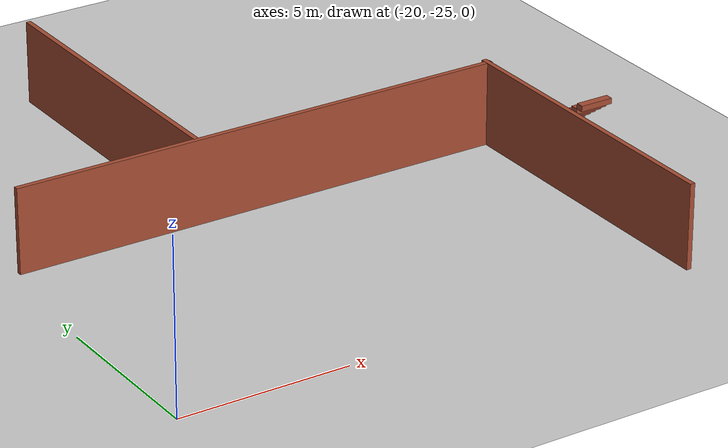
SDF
<sdf version="1.6">
 <world name="default">
  <model name="ground_plane">
   <static>1</static>
   <link name="link">
    <collision name="collision">
     <geometry><plane><normal>0 0 1</normal><size>100 100</size></plane></geometry>
     <surface><friction><ode><mu>100</mu><mu2>50</mu2></ode></friction></surface>
    </collision>
    <visual name="visual">
     <cast_shadows>0</cast_shadows>
     <geometry><plane><normal>0 0 1</normal><size>100 100</size></plane></geometry>
     <material>
      <script><uri>file://media/materials/scripts/gazebo.material</uri><name>Gazebo/Grey</name></script>
     </material>
    </visual>
   </link>
  </model>
  <model name="wonkyBuilding">
   <link name="Stairs_0">
    <visual name="Stairs_0_Visual_0">
     <pose>1.61422 -5.84922 0.083333 0 -0 0</pose>
     <geometry><box><size>1 0.233333 0.166667</size></box></geometry>
     <material>
      <script><uri>file://media/materials/scripts/gazebo.material</uri><name>Gazebo/Bricks</name></script>
      <ambient>1 1 1 1</ambient>
      <shader type="pixel"/>
      <diffuse>1 1 1 1</diffuse>
      <specular>0.2 0.2 0.2 1</specular>
      <emissive>0 0 0 1</emissive>
     </material>
     <meta><layer>0</layer></meta>
    </visual>
    <visual name="Stairs_0_Visual_1">
     <pose>1.61422 -6.08256 0.25 0 -0 0</pose>
     <geometry><box><size>1 0.233333 0.166667</size></box></geometry>
     <material>
      <script><uri>file://media/materials/scripts/gazebo.material</uri><name>Gazebo/Bricks</name></script>
      <ambient>1 1 1 1</ambient>
      <shader type="pixel"/>
      <diffuse>1 1 1 1</diffuse>
      <specular>0.2 0.2 0.2 1</specular>
      <emissive>0 0 0 1</emissive>
     </material>
     <meta><layer>0</layer></meta>
    </visual>
    <visual name="Stairs_0_Visual_2">
     <pose>1.61422 -6.31589 0.416667 0 -0 0</pose>
     <geometry><box><size>1 0.233333 0.166667</size></box></geometry>
     <material>
      <script><uri>file://media/materials/scripts/gazebo.material</uri><name>Gazebo/Bricks</name></script>
      <ambient>1 1 1 1</ambient>
      <shader type="pixel"/>
      <diffuse>1 1 1 1</diffuse>
      <specular>0.2 0.2 0.2 1</specular>
      <emissive>0 0 0 1</emissive>
     </material>
     <meta><layer>0</layer></meta>
    </visual>
    <visual name="Stairs_0_Visual_3">
     <pose>1.61422 -6.54923 0.583333 0 -0 0</pose>
     <geometry><box><size>1 0.233333 0.166667</size></box></geometry>
     <material>
      <script><uri>file://media/materials/scripts/gazebo.material</uri><name>Gazebo/Bricks</name></script>
      <ambient>1 1 1 1</ambient>
      <shader type="pixel"/>
      <diffuse>1 1 1 1</diffuse>
      <specular>0.2 0.2 0.2 1</specular>
      <emissive>0 0 0 1</emissive>
     </material>
     <meta><layer>0</layer></meta>
    </visual>
    <visual name="Stairs_0_Visual_4">
     <pose>1.61422 -6.78256 0.75 0 -0 0</pose>
     <geometry><box><size>1 0.233333 0.166667</size></box></geometry>
     <material>
      <script><uri>file://media/materials/scripts/gazebo.material</uri><name>Gazebo/Bricks</name></script>
      <ambient>1 1 1 1</ambient>
      <shader type="pixel"/>
      <diffuse>1 1 1 1</diffuse>
      <specular>0.2 0.2 0.2 1</specular>
      <emissive>0 0 0 1</emissive>
     </material>
     <meta><layer>0</layer></meta>
    </visual>
    <visual name="Stairs_0_Visual_5">
     <pose>1.61422 -7.01589 0.916667 0 -0 0</pose>
     <geometry><box><size>1 0.233333 0.166667</size></box></geometry>
     <material>
      <script><uri>file://media/materials/scripts/gazebo.material</uri><name>Gazebo/Bricks</name></script>
      <ambient>1 1 1 1</ambient>
      <shader type="pixel"/>
      <diffuse>1 1 1 1</diffuse>
      <specular>0.2 0.2 0.2 1</specular>
      <emissive>0 0 0 1</emissive>
     </material>
     <meta><layer>0</layer></meta>
    </visual>
    <visual name="Stairs_0_Visual_6">
     <pose>1.61422 -7.24923 1.08333 0 -0 0</pose>
     <geometry><box><size>1 0.233333 0.166667</size></box></geometry>
     <material>
      <script><uri>file://media/materials/scripts/gazebo.material</uri><name>Gazebo/Bricks</name></script>
      <ambient>1 1 1 1</ambient>
      <shader type="pixel"/>
      <diffuse>1 1 1 1</diffuse>
      <specular>0.2 0.2 0.2 1</specular>
      <emissive>0 0 0 1</emissive>
     </material>
     <meta><layer>0</layer></meta>
    </visual>
    <visual name="Stairs_0_Visual_7">
     <pose>1.61422 -7.48256 1.25 0 -0 0</pose>
     <geometry><box><size>1 0.233333 0.166667</size></box></geometry>
     <material>
      <script><uri>file://media/materials/scripts/gazebo.material</uri><name>Gazebo/Bricks</name></script>
      <ambient>1 1 1 1</ambient>
      <shader type="pixel"/>
      <diffuse>1 1 1 1</diffuse>
      <specular>0.2 0.2 0.2 1</specular>
      <emissive>0 0 0 1</emissive>
     </material>
     <meta><layer>0</layer></meta>
    </visual>
    <visual name="Stairs_0_Visual_8">
     <pose>1.61422 -7.71589 1.41667 0 -0 0</pose>
     <geometry><box><size>1 0.233333 0.166667</size></box></geometry>
     <material>
      <script><uri>file://media/materials/scripts/gazebo.material</uri><name>Gazebo/Bricks</name></script>
      <ambient>1 1 1 1</ambient>
      <shader type="pixel"/>
      <diffuse>1 1 1 1</diffuse>
      <specular>0.2 0.2 0.2 1</specular>
      <emissive>0 0 0 1</emissive>
     </material>
     <meta><layer>0</layer></meta>
    </visual>
    <visual name="Stairs_0_Visual_9">
     <pose>1.61422 -7.94923 1.58333 0 -0 0</pose>
     <geometry><box><size>1 0.233333 0.166667</size></box></geometry>
     <material>
      <script><uri>file://media/materials/scripts/gazebo.material</uri><name>Gazebo/Bricks</name></script>
      <ambient>1 1 1 1</ambient>
      <shader type="pixel"/>
      <diffuse>1 1 1 1</diffuse>
      <specular>0.2 0.2 0.2 1</specular>
      <emissive>0 0 0 1</emissive>
     </material>
     <meta><layer>0</layer></meta>
    </visual>
    <visual name="Stairs_0_Visual_10">
     <pose>1.61422 -8.18256 1.75 0 -0 0</pose>
     <geometry><box><size>1 0.233333 0.166667</size></box></geometry>
     <material>
      <script><uri>file://media/materials/scripts/gazebo.material</uri><name>Gazebo/Bricks</name></script>
      <ambient>1 1 1 1</ambient>
      <shader type="pixel"/>
      <diffuse>1 1 1 1</diffuse>
      <specular>0.2 0.2 0.2 1</specular>
      <emissive>0 0 0 1</emissive>
     </material>
     <meta><layer>0</layer></meta>
    </visual>
    <visual name="Stairs_0_Visual_11">
     <pose>1.61422 -8.41589 1.91667 0 -0 0</pose>
     <geometry><box><size>1 0.233333 0.166667</size></box></geometry>
     <material>
      <script><uri>file://media/materials/scripts/gazebo.material</uri><name>Gazebo/Bricks</name></script>
      <ambient>1 1 1 1</ambient>
      <shader type="pixel"/>
      <diffuse>1 1 1 1</diffuse>
      <specular>0.2 0.2 0.2 1</specular>
      <emissive>0 0 0 1</emissive>
     </material>
     <meta><layer>0</layer></meta>
    </visual>
    <visual name="Stairs_0_Visual_12">
     <pose>1.61422 -8.64922 2.08333 0 -0 0</pose>
     <geometry><box><size>1 0.233333 0.166667</size></box></geometry>
     <material>
      <script><uri>file://media/materials/scripts/gazebo.material</uri><name>Gazebo/Bricks</name></script>
      <ambient>1 1 1 1</ambient>
      <shader type="pixel"/>
      <diffuse>1 1 1 1</diffuse>
      <specular>0.2 0.2 0.2 1</specular>
      <emissive>0 0 0 1</emissive>
     </material>
     <meta><layer>0</layer></meta>
    </visual>
    <visual name="Stairs_0_Visual_13">
     <pose>1.61422 -8.88256 2.25 0 -0 0</pose>
     <geometry><box><size>1 0.233333 0.166667</size></box></geometry>
     <material>
      <script><uri>file://media/materials/scripts/gazebo.material</uri><name>Gazebo/Bricks</name></script>
      <ambient>1 1 1 1</ambient>
      <shader type="pixel"/>
      <diffuse>1 1 1 1</diffuse>
      <specular>0.2 0.2 0.2 1</specular>
      <emissive>0 0 0 1</emissive>
     </material>
     <meta><layer>0</layer></meta>
    </visual>
    <visual name="Stairs_0_Visual_14">
     <pose>1.61422 -9.11589 2.41667 0 -0 0</pose>
     <geometry><box><size>1 0.233333 0.166667</size></box></geometry>
     <material>
      <script><uri>file://media/materials/scripts/gazebo.material</uri><name>Gazebo/Bricks</name></script>
      <ambient>1 1 1 1</ambient>
      <shader type="pixel"/>
      <diffuse>1 1 1 1</diffuse>
      <specular>0.2 0.2 0.2 1</specular>
      <emissive>0 0 0 1</emissive>
     </material>
     <meta><layer>0</layer></meta>
    </visual>
    <collision name="Stairs_0_Collision_0">
     <pose>1.61422 -5.84922 0.083333 0 -0 0</pose>
     <geometry><box><size>1 0.233333 0.166667</size></box></geometry>
     <surface>
      <friction>
       <ode><mu>1</mu><mu2>1</mu2><fdir1>0 0 0</fdir1><slip1>0</slip1><slip2>0</slip2></ode>
       <torsional>
        <coefficient>1</coefficient>
        <patch_radius>0</patch_radius>
        <surface_radius>0</surface_radius>
        <use_patch_radius>1</use_patch_radius>
        <ode><slip>0</slip></ode>
       </torsional>
      </friction>
      <bounce><restitution_coefficient>0</restitution_coefficient><threshold>1e+06</threshold></bounce>
      <contact>
       <collide_without_contact>0</collide_without_contact>
       <collide_without_contact_bitmask>1</collide_without_contact_bitmask>
       <collide_bitmask>1</collide_bitmask>
       <ode>
        <soft_cfm>0</soft_cfm>
        <soft_erp>0.2</soft_erp>
        <kp>1e+13</kp>
        <kd>1</kd>
        <max_vel>0.01</max_vel>
        <min_depth>0</min_depth>
       </ode>
       <bullet>
        <split_impulse>1</split_impulse>
        <split_impulse_penetration_threshold>-0.01</split_impulse_penetration_threshold>
        <soft_cfm>0</soft_cfm>
        <soft_erp>0.2</soft_erp>
        <kp>1e+13</kp>
        <kd>1</kd>
       </bullet>
      </contact>
     </surface>
    </collision>
    <collision name="Stairs_0_Collision_1">
     <pose>1.61422 -6.08256 0.25 0 -0 0</pose>
     <geometry><box><size>1 0.233333 0.166667</size></box></geometry>
     <surface>
      <friction>
       <ode><mu>1</mu><mu2>1</mu2><fdir1>0 0 0</fdir1><slip1>0</slip1><slip2>0</slip2></ode>
       <torsional>
        <coefficient>1</coefficient>
        <patch_radius>0</patch_radius>
        <surface_radius>0</surface_radius>
        <use_patch_radius>1</use_patch_radius>
        <ode><slip>0</slip></ode>
       </torsional>
      </friction>
      <bounce><restitution_coefficient>0</restitution_coefficient><threshold>1e+06</threshold></bounce>
      <contact>
       <collide_without_contact>0</collide_without_contact>
       <collide_without_contact_bitmask>1</collide_without_contact_bitmask>
       <collide_bitmask>1</collide_bitmask>
       <ode>
        <soft_cfm>0</soft_cfm>
        <soft_erp>0.2</soft_erp>
        <kp>1e+13</kp>
        <kd>1</kd>
        <max_vel>0.01</max_vel>
        <min_depth>0</min_depth>
       </ode>
       <bullet>
        <split_impulse>1</split_impulse>
        <split_impulse_penetration_threshold>-0.01</split_impulse_penetration_threshold>
        <soft_cfm>0</soft_cfm>
        <soft_erp>0.2</soft_erp>
        <kp>1e+13</kp>
        <kd>1</kd>
       </bullet>
      </contact>
     </surface>
    </collision>
    <collision name="Stairs_0_Collision_2">
     <pose>1.61422 -6.31589 0.416667 0 -0 0</pose>
     <geometry><box><size>1 0.233333 0.166667</size></box></geometry>
     <surface>
      <friction>
       <ode><mu>1</mu><mu2>1</mu2><fdir1>0 0 0</fdir1><slip1>0</slip1><slip2>0</slip2></ode>
       <torsional>
        <coefficient>1</coefficient>
        <patch_radius>0</patch_radius>
        <surface_radius>0</surface_radius>
        <use_patch_radius>1</use_patch_radius>
        <ode><slip>0</slip></ode>
       </torsional>
      </friction>
      <bounce><restitution_coefficient>0</restitution_coefficient><threshold>1e+06</threshold></bounce>
      <contact>
       <collide_without_contact>0</collide_without_contact>
       <collide_without_contact_bitmask>1</collide_without_contact_bitmask>
       <collide_bitmask>1</collide_bitmask>
       <ode>
        <soft_cfm>0</soft_cfm>
        <soft_erp>0.2</soft_erp>
        <kp>1e+13</kp>
        <kd>1</kd>
        <max_vel>0.01</max_vel>
        <min_depth>0</min_depth>
       </ode>
       <bullet>
        <split_impulse>1</split_impulse>
        <split_impulse_penetration_threshold>-0.01</split_impulse_penetration_threshold>
        <soft_cfm>0</soft_cfm>
        <soft_erp>0.2</soft_erp>
        <kp>1e+13</kp>
        <kd>1</kd>
       </bullet>
      </contact>
     </surface>
    </collision>
    <collision name="Stairs_0_Collision_3">
     <pose>1.61422 -6.54923 0.583333 0 -0 0</pose>
     <geometry><box><size>1 0.233333 0.166667</size></box></geometry>
     <surface>
      <friction>
       <ode><mu>1</mu><mu2>1</mu2><fdir1>0 0 0</fdir1><slip1>0</slip1><slip2>0</slip2></ode>
       <torsional>
        <coefficient>1</coefficient>
        <patch_radius>0</patch_radius>
        <surface_radius>0</surface_radius>
        <use_patch_radius>1</use_patch_radius>
        <ode><slip>0</slip></ode>
       </torsional>
      </friction>
      <bounce><restitution_coefficient>0</restitution_coefficient><threshold>1e+06</threshold></bounce>
      <contact>
       <collide_without_contact>0</collide_without_contact>
       <collide_without_contact_bitmask>1</collide_without_contact_bitmask>
       <collide_bitmask>1</collide_bitmask>
       <ode>
        <soft_cfm>0</soft_cfm>
        <soft_erp>0.2</soft_erp>
        <kp>1e+13</kp>
        <kd>1</kd>
        <max_vel>0.01</max_vel>
        <min_depth>0</min_depth>
       </ode>
       <bullet>
        <split_impulse>1</split_impulse>
        <split_impulse_penetration_threshold>-0.01</split_impulse_penetration_threshold>
        <soft_cfm>0</soft_cfm>
        <soft_erp>0.2</soft_erp>
        <kp>1e+13</kp>
        <kd>1</kd>
       </bullet>
      </contact>
     </surface>
    </collision>
    <collision name="Stairs_0_Collision_4">
     <pose>1.61422 -6.78256 0.75 0 -0 0</pose>
     <geometry><box><size>1 0.233333 0.166667</size></box></geometry>
     <surface>
      <friction>
       <ode><mu>1</mu><mu2>1</mu2><fdir1>0 0 0</fdir1><slip1>0</slip1><slip2>0</slip2></ode>
       <torsional>
        <coefficient>1</coefficient>
        <patch_radius>0</patch_radius>
        <surface_radius>0</surface_radius>
        <use_patch_radius>1</use_patch_radius>
        <ode><slip>0</slip></ode>
       </torsional>
      </friction>
      <bounce><restitution_coefficient>0</restitution_coefficient><threshold>1e+06</threshold></bounce>
      <contact>
       <collide_without_contact>0</collide_without_contact>
       <collide_without_contact_bitmask>1</collide_without_contact_bitmask>
       <collide_bitmask>1</collide_bitmask>
       <ode>
        <soft_cfm>0</soft_cfm>
        <soft_erp>0.2</soft_erp>
        <kp>1e+13</kp>
        <kd>1</kd>
        <max_vel>0.01</max_vel>
        <min_depth>0</min_depth>
       </ode>
       <bullet>
        <split_impulse>1</split_impulse>
        <split_impulse_penetration_threshold>-0.01</split_impulse_penetration_threshold>
        <soft_cfm>0</soft_cfm>
        <soft_erp>0.2</soft_erp>
        <kp>1e+13</kp>
        <kd>1</kd>
       </bullet>
      </contact>
     </surface>
    </collision>
    <collision name="Stairs_0_Collision_5">
     <pose>1.61422 -7.01589 0.916667 0 -0 0</pose>
     <geometry><box><size>1 0.233333 0.166667</size></box></geometry>
     <surface>
      <friction>
       <ode><mu>1</mu><mu2>1</mu2><fdir1>0 0 0</fdir1><slip1>0</slip1><slip2>0</slip2></ode>
       <torsional>
        <coefficient>1</coefficient>
        <patch_radius>0</patch_radius>
        <surface_radius>0</surface_radius>
        <use_patch_radius>1</use_patch_radius>
        <ode><slip>0</slip></ode>
       </torsional>
      </friction>
      <bounce><restitution_coefficient>0</restitution_coefficient><threshold>1e+06</threshold></bounce>
      <contact>
       <collide_without_contact>0</collide_without_contact>
       <collide_without_contact_bitmask>1</collide_without_contact_bitmask>
       <collide_bitmask>1</collide_bitmask>
       <ode>
        <soft_cfm>0</soft_cfm>
        <soft_erp>0.2</soft_erp>
        <kp>1e+13</kp>
        <kd>1</kd>
        <max_vel>0.01</max_vel>
        <min_depth>0</min_depth>
       </ode>
       <bullet>
        <split_impulse>1</split_impulse>
        <split_impulse_penetration_threshold>-0.01</split_impulse_penetration_threshold>
        <soft_cfm>0</soft_cfm>
        <soft_erp>0.2</soft_erp>
        <kp>1e+13</kp>
        <kd>1</kd>
       </bullet>
      </contact>
     </surface>
    </collision>
    <collision name="Stairs_0_Collision_6">
     <pose>1.61422 -7.24923 1.08333 0 -0 0</pose>
     <geometry><box><size>1 0.233333 0.166667</size></box></geometry>
     <surface>
      <friction>
       <ode><mu>1</mu><mu2>1</mu2><fdir1>0 0 0</fdir1><slip1>0</slip1><slip2>0</slip2></ode>
       <torsional>
        <coefficient>1</coefficient>
        <patch_radius>0</patch_radius>
        <surface_radius>0</surface_radius>
        <use_patch_radius>1</use_patch_radius>
        <ode><slip>0</slip></ode>
       </torsional>
      </friction>
      <bounce><restitution_coefficient>0</restitution_coefficient><threshold>1e+06</threshold></bounce>
      <contact>
       <collide_without_contact>0</collide_without_contact>
       <collide_without_contact_bitmask>1</collide_without_contact_bitmask>
       <collide_bitmask>1</collide_bitmask>
       <ode>
        <soft_cfm>0</soft_cfm>
        <soft_erp>0.2</soft_erp>
        <kp>1e+13</kp>
        <kd>1</kd>
        <max_vel>0.01</max_vel>
        <min_depth>0</min_depth>
       </ode>
       <bullet>
        <split_impulse>1</split_impulse>
        <split_impulse_penetration_threshold>-0.01</split_impulse_penetration_threshold>
        <soft_cfm>0</soft_cfm>
        <soft_erp>0.2</soft_erp>
        <kp>1e+13</kp>
        <kd>1</kd>
       </bullet>
      </contact>
     </surface>
    </collision>
    <collision name="Stairs_0_Collision_8">
     <pose>1.61422 -7.71589 1.41667 0 -0 0</pose>
     <geometry><box><size>1 0.233333 0.166667</size></box></geometry>
     <surface>
      <friction>
       <ode><mu>1</mu><mu2>1</mu2><fdir1>0 0 0</fdir1><slip1>0</slip1><slip2>0</slip2></ode>
       <torsional>
        <coefficient>1</coefficient>
        <patch_radius>0</patch_radius>
        <surface_radius>0</surface_radius>
        <use_patch_radius>1</use_patch_radius>
        <ode><slip>0</slip></ode>
       </torsional>
      </friction>
      <bounce><restitution_coefficient>0</restitution_coefficient><threshold>1e+06</threshold></bounce>
      <contact>
       <collide_without_contact>0</collide_without_contact>
       <collide_without_contact_bitmask>1</collide_without_contact_bitmask>
       <collide_bitmask>1</collide_bitmask>
       <ode>
        <soft_cfm>0</soft_cfm>
        <soft_erp>0.2</soft_erp>
        <kp>1e+13</kp>
        <kd>1</kd>
        <max_vel>0.01</max_vel>
        <min_depth>0</min_depth>
       </ode>
       <bullet>
        <split_impulse>1</split_impulse>
        <split_impulse_penetration_threshold>-0.01</split_impulse_penetration_threshold>
        <soft_cfm>0</soft_cfm>
        <soft_erp>0.2</soft_erp>
        <kp>1e+13</kp>
        <kd>1</kd>
       </bullet>
      </contact>
     </surface>
    </collision>
    <collision name="Stairs_0_Collision_7">
     <pose>1.61422 -7.48256 1.25 0 -0 0</pose>
     <geometry><box><size>1 0.233333 0.166667</size></box></geometry>
     <surface>
      <friction>
       <ode><mu>1</mu><mu2>1</mu2><fdir1>0 0 0</fdir1><slip1>0</slip1><slip2>0</slip2></ode>
       <torsional>
        <coefficient>1</coefficient>
        <patch_radius>0</patch_radius>
        <surface_radius>0</surface_radius>
        <use_patch_radius>1</use_patch_radius>
        <ode><slip>0</slip></ode>
       </torsional>
      </friction>
      <bounce><restitution_coefficient>0</restitution_coefficient><threshold>1e+06</threshold></bounce>
      <contact>
       <collide_without_contact>0</collide_without_contact>
       <collide_without_contact_bitmask>1</collide_without_contact_bitmask>
       <collide_bitmask>1</collide_bitmask>
       <ode>
        <soft_cfm>0</soft_cfm>
        <soft_erp>0.2</soft_erp>
        <kp>1e+13</kp>
        <kd>1</kd>
        <max_vel>0.01</max_vel>
        <min_depth>0</min_depth>
       </ode>
       <bullet>
        <split_impulse>1</split_impulse>
        <split_impulse_penetration_threshold>-0.01</split_impulse_penetration_threshold>
        <soft_cfm>0</soft_cfm>
        <soft_erp>0.2</soft_erp>
        <kp>1e+13</kp>
        <kd>1</kd>
       </bullet>
      </contact>
     </surface>
    </collision>
    <collision name="Stairs_0_Collision_10">
     <pose>1.61422 -8.18256 1.75 0 -0 0</pose>
     <geometry><box><size>1 0.233333 0.166667</size></box></geometry>
     <surface>
      <friction>
       <ode><mu>1</mu><mu2>1</mu2><fdir1>0 0 0</fdir1><slip1>0</slip1><slip2>0</slip2></ode>
       <torsional>
        <coefficient>1</coefficient>
        <patch_radius>0</patch_radius>
        <surface_radius>0</surface_radius>
        <use_patch_radius>1</use_patch_radius>
        <ode><slip>0</slip></ode>
       </torsional>
      </friction>
      <bounce><restitution_coefficient>0</restitution_coefficient><threshold>1e+06</threshold></bounce>
      <contact>
       <collide_without_contact>0</collide_without_contact>
       <collide_without_contact_bitmask>1</collide_without_contact_bitmask>
       <collide_bitmask>1</collide_bitmask>
       <ode>
        <soft_cfm>0</soft_cfm>
        <soft_erp>0.2</soft_erp>
        <kp>1e+13</kp>
        <kd>1</kd>
        <max_vel>0.01</max_vel>
        <min_depth>0</min_depth>
       </ode>
       <bullet>
        <split_impulse>1</split_impulse>
        <split_impulse_penetration_threshold>-0.01</split_impulse_penetration_threshold>
        <soft_cfm>0</soft_cfm>
        <soft_erp>0.2</soft_erp>
        <kp>1e+13</kp>
        <kd>1</kd>
       </bullet>
      </contact>
     </surface>
    </collision>
    <collision name="Stairs_0_Collision_9">
     <pose>1.61422 -7.94923 1.58333 0 -0 0</pose>
     <geometry><box><size>1 0.233333 0.166667</size></box></geometry>
     <surface>
      <friction>
       <ode><mu>1</mu><mu2>1</mu2><fdir1>0 0 0</fdir1><slip1>0</slip1><slip2>0</slip2></ode>
       <torsional>
        <coefficient>1</coefficient>
        <patch_radius>0</patch_radius>
        <surface_radius>0</surface_radius>
        <use_patch_radius>1</use_patch_radius>
        <ode><slip>0</slip></ode>
       </torsional>
      </friction>
      <bounce><restitution_coefficient>0</restitution_coefficient><threshold>1e+06</threshold></bounce>
      <contact>
       <collide_without_contact>0</collide_without_contact>
       <collide_without_contact_bitmask>1</collide_without_contact_bitmask>
       <collide_bitmask>1</collide_bitmask>
       <ode>
        <soft_cfm>0</soft_cfm>
        <soft_erp>0.2</soft_erp>
        <kp>1e+13</kp>
        <kd>1</kd>
        <max_vel>0.01</max_vel>
        <min_depth>0</min_depth>
       </ode>
       <bullet>
        <split_impulse>1</split_impulse>
        <split_impulse_penetration_threshold>-0.01</split_impulse_penetration_threshold>
        <soft_cfm>0</soft_cfm>
        <soft_erp>0.2</soft_erp>
        <kp>1e+13</kp>
        <kd>1</kd>
       </bullet>
      </contact>
     </surface>
    </collision>
    <collision name="Stairs_0_Collision_11">
     <pose>1.61422 -8.41589 1.91667 0 -0 0</pose>
     <geometry><box><size>1 0.233333 0.166667</size></box></geometry>
     <surface>
      <friction>
       <ode><mu>1</mu><mu2>1</mu2><fdir1>0 0 0</fdir1><slip1>0</slip1><slip2>0</slip2></ode>
       <torsional>
        <coefficient>1</coefficient>
        <patch_radius>0</patch_radius>
        <surface_radius>0</surface_radius>
        <use_patch_radius>1</use_patch_radius>
        <ode><slip>0</slip></ode>
       </torsional>
      </friction>
      <bounce><restitution_coefficient>0</restitution_coefficient><threshold>1e+06</threshold></bounce>
      <contact>
       <collide_without_contact>0</collide_without_contact>
       <collide_without_contact_bitmask>1</collide_without_contact_bitmask>
       <collide_bitmask>1</collide_bitmask>
       <ode>
        <soft_cfm>0</soft_cfm>
        <soft_erp>0.2</soft_erp>
        <kp>1e+13</kp>
        <kd>1</kd>
        <max_vel>0.01</max_vel>
        <min_depth>0</min_depth>
       </ode>
       <bullet>
        <split_impulse>1</split_impulse>
        <split_impulse_penetration_threshold>-0.01</split_impulse_penetration_threshold>
        <soft_cfm>0</soft_cfm>
        <soft_erp>0.2</soft_erp>
        <kp>1e+13</kp>
        <kd>1</kd>
       </bullet>
      </contact>
     </surface>
    </collision>
    <collision name="Stairs_0_Collision_13">
     <pose>1.61422 -8.88256 2.25 0 -0 0</pose>
     <geometry><box><size>1 0.233333 0.166667</size></box></geometry>
     <surface>
      <friction>
       <ode><mu>1</mu><mu2>1</mu2><fdir1>0 0 0</fdir1><slip1>0</slip1><slip2>0</slip2></ode>
       <torsional>
        <coefficient>1</coefficient>
        <patch_radius>0</patch_radius>
        <surface_radius>0</surface_radius>
        <use_patch_radius>1</use_patch_radius>
        <ode><slip>0</slip></ode>
       </torsional>
      </friction>
      <bounce><restitution_coefficient>0</restitution_coefficient><threshold>1e+06</threshold></bounce>
      <contact>
       <collide_without_contact>0</collide_without_contact>
       <collide_without_contact_bitmask>1</collide_without_contact_bitmask>
       <collide_bitmask>1</collide_bitmask>
       <ode>
        <soft_cfm>0</soft_cfm>
        <soft_erp>0.2</soft_erp>
        <kp>1e+13</kp>
        <kd>1</kd>
        <max_vel>0.01</max_vel>
        <min_depth>0</min_depth>
       </ode>
       <bullet>
        <split_impulse>1</split_impulse>
        <split_impulse_penetration_threshold>-0.01</split_impulse_penetration_threshold>
        <soft_cfm>0</soft_cfm>
        <soft_erp>0.2</soft_erp>
        <kp>1e+13</kp>
        <kd>1</kd>
       </bullet>
      </contact>
     </surface>
    </collision>
    <collision name="Stairs_0_Collision_12">
     <pose>1.61422 -8.64922 2.08333 0 -0 0</pose>
     <geometry><box><size>1 0.233333 0.166667</size></box></geometry>
     <surface>
      <friction>
       <ode><mu>1</mu><mu2>1</mu2><fdir1>0 0 0</fdir1><slip1>0</slip1><slip2>0</slip2></ode>
       <torsional>
        <coefficient>1</coefficient>
        <patch_radius>0</patch_radius>
        <surface_radius>0</surface_radius>
        <use_patch_radius>1</use_patch_radius>
        <ode><slip>0</slip></ode>
       </torsional>
      </friction>
      <bounce><restitution_coefficient>0</restitution_coefficient><threshold>1e+06</threshold></bounce>
      <contact>
       <collide_without_contact>0</collide_without_contact>
       <collide_without_contact_bitmask>1</collide_without_contact_bitmask>
       <collide_bitmask>1</collide_bitmask>
       <ode>
        <soft_cfm>0</soft_cfm>
        <soft_erp>0.2</soft_erp>
        <kp>1e+13</kp>
        <kd>1</kd>
        <max_vel>0.01</max_vel>
        <min_depth>0</min_depth>
       </ode>
       <bullet>
        <split_impulse>1</split_impulse>
        <split_impulse_penetration_threshold>-0.01</split_impulse_penetration_threshold>
        <soft_cfm>0</soft_cfm>
        <soft_erp>0.2</soft_erp>
        <kp>1e+13</kp>
        <kd>1</kd>
       </bullet>
      </contact>
     </surface>
    </collision>
    <collision name="Stairs_0_Collision_14">
     <pose>1.61422 -9.11589 2.41667 0 -0 0</pose>
     <geometry><box><size>1 0.233333 0.166667</size></box></geometry>
     <surface>
      <friction>
       <ode><mu>1</mu><mu2>1</mu2><fdir1>0 0 0</fdir1><slip1>0</slip1><slip2>0</slip2></ode>
       <torsional>
        <coefficient>1</coefficient>
        <patch_radius>0</patch_radius>
        <surface_radius>0</surface_radius>
        <use_patch_radius>1</use_patch_radius>
        <ode><slip>0</slip></ode>
       </torsional>
      </friction>
      <bounce><restitution_coefficient>0</restitution_coefficient><threshold>1e+06</threshold></bounce>
      <contact>
       <collide_without_contact>0</collide_without_contact>
       <collide_without_contact_bitmask>1</collide_without_contact_bitmask>
       <collide_bitmask>1</collide_bitmask>
       <ode>
        <soft_cfm>0</soft_cfm>
        <soft_erp>0.2</soft_erp>
        <kp>1e+13</kp>
        <kd>1</kd>
        <max_vel>0.01</max_vel>
        <min_depth>0</min_depth>
       </ode>
       <bullet>
        <split_impulse>1</split_impulse>
        <split_impulse_penetration_threshold>-0.01</split_impulse_penetration_threshold>
        <soft_cfm>0</soft_cfm>
        <soft_erp>0.2</soft_erp>
        <kp>1e+13</kp>
        <kd>1</kd>
       </bullet>
      </contact>
     </surface>
    </collision>
   </link>
   <link name="Wall_44">
    <pose>-8.75228 -0.695387 0 0 0 -1.5708</pose>
    <visual name="Wall_44_Visual">
     <pose>0 0 1.25 0 -0 0</pose>
     <geometry><box><size>9.5 0.15 2.5</size></box></geometry>
     <material>
      <script><uri>file://media/materials/scripts/gazebo.material</uri><name>Gazebo/Bricks</name></script>
      <ambient>1 1 1 1</ambient>
      <shader type="pixel"/>
      <diffuse>1 1 1 1</diffuse>
      <specular>0.2 0.2 0.2 1</specular>
      <emissive>0 0 0 1</emissive>
     </material>
     <meta><layer>0</layer></meta>
    </visual>
    <collision name="Wall_44_Collision">
     <pose>0 0 1.25 0 -0 0</pose>
     <geometry><box><size>9.5 0.15 2.5</size></box></geometry>
     <surface>
      <friction>
       <ode><mu>1</mu><mu2>1</mu2><fdir1>0 0 0</fdir1><slip1>0</slip1><slip2>0</slip2></ode>
       <torsional>
        <coefficient>1</coefficient>
        <patch_radius>0</patch_radius>
        <surface_radius>0</surface_radius>
        <use_patch_radius>1</use_patch_radius>
        <ode><slip>0</slip></ode>
       </torsional>
      </friction>
      <bounce><restitution_coefficient>0</restitution_coefficient><threshold>1e+06</threshold></bounce>
      <contact>
       <collide_without_contact>0</collide_without_contact>
       <collide_without_contact_bitmask>1</collide_without_contact_bitmask>
       <collide_bitmask>1</collide_bitmask>
       <ode>
        <soft_cfm>0</soft_cfm>
        <soft_erp>0.2</soft_erp>
        <kp>1e+13</kp>
        <kd>1</kd>
        <max_vel>0.01</max_vel>
        <min_depth>0</min_depth>
       </ode>
       <bullet>
        <split_impulse>1</split_impulse>
        <split_impulse_penetration_threshold>-0.01</split_impulse_penetration_threshold>
        <soft_cfm>0</soft_cfm>
        <soft_erp>0.2</soft_erp>
        <kp>1e+13</kp>
        <kd>1</kd>
       </bullet>
      </contact>
     </surface>
    </collision>
   </link>
   <link name="Wall_45">
    <pose>-6.72899 -5.40282 0 0 -0 0</pose>
    <inertial>
     <mass>1</mass>
     <inertia><ixx>1</ixx><ixy>0</ixy><ixz>0</ixz><iyy>1</iyy><iyz>0</iyz><izz>1</izz></inertia>
    </inertial>
    <visual name="Wall_45_Visual">
     <pose>0 0 1.25 0 -0 0</pose>
     <geometry><box><size>15 0.15 2.5</size></box></geometry>
     <material>
      <script><uri>file://media/materials/scripts/gazebo.material</uri><name>Gazebo/Bricks</name></script>
      <ambient>1 1 1 1</ambient>
      <shader type="pixel"><normal_map>__default__</normal_map></shader>
      <diffuse>1 1 1 1</diffuse>
      <specular>0.2 0.2 0.2 1</specular>
      <emissive>0 0 0 1</emissive>
     </material>
     <meta><layer>0</layer></meta>
    </visual>
    <collision name="Wall_45_Collision">
     <pose>0 0 1.25 0 -0 0</pose>
     <geometry><box><size>15 0.15 2.5</size></box></geometry>
     <surface>
      <friction>
       <ode><mu>1</mu><mu2>1</mu2><fdir1>0 0 0</fdir1><slip1>0</slip1><slip2>0</slip2></ode>
       <torsional>
        <coefficient>1</coefficient>
        <patch_radius>0</patch_radius>
        <surface_radius>0</surface_radius>
        <use_patch_radius>1</use_patch_radius>
        <ode><slip>0</slip></ode>
       </torsional>
      </friction>
      <bounce><restitution_coefficient>0</restitution_coefficient><threshold>1e+06</threshold></bounce>
      <contact>
       <collide_without_contact>0</collide_without_contact>
       <collide_without_contact_bitmask>1</collide_without_contact_bitmask>
       <collide_bitmask>1</collide_bitmask>
       <ode>
        <soft_cfm>0</soft_cfm>
        <soft_erp>0.2</soft_erp>
        <kp>1e+13</kp>
        <kd>1</kd>
        <max_vel>0.01</max_vel>
        <min_depth>0</min_depth>
       </ode>
       <bullet>
        <split_impulse>1</split_impulse>
        <split_impulse_penetration_threshold>-0.01</split_impulse_penetration_threshold>
        <soft_cfm>0</soft_cfm>
        <soft_erp>0.2</soft_erp>
        <kp>1e+13</kp>
        <kd>1</kd>
       </bullet>
      </contact>
     </surface>
    </collision>
   </link>
   <link name="Wall_46">
    <pose>0.675089 -9.95313 0 0 0 -1.5708</pose>
    <visual name="Wall_46_Visual">
     <pose>0 0 1.25 0 -0 0</pose>
     <geometry><box><size>9.5 0.15 2.5</size></box></geometry>
     <material>
      <script><uri>file://media/materials/scripts/gazebo.material</uri><name>Gazebo/Bricks</name></script>
      <ambient>1 1 1 1</ambient>
      <shader type="pixel"/>
      <diffuse>1 1 1 1</diffuse>
      <specular>0.2 0.2 0.2 1</specular>
      <emissive>0 0 0 1</emissive>
     </material>
     <meta><layer>0</layer></meta>
    </visual>
    <collision name="Wall_46_Collision">
     <pose>0 0 1.25 0 -0 0</pose>
     <geometry><box><size>9.5 0.15 2.5</size></box></geometry>
     <surface>
      <friction>
       <ode><mu>1</mu><mu2>1</mu2><fdir1>0 0 0</fdir1><slip1>0</slip1><slip2>0</slip2></ode>
       <torsional>
        <coefficient>1</coefficient>
        <patch_radius>0</patch_radius>
        <surface_radius>0</surface_radius>
        <use_patch_radius>1</use_patch_radius>
        <ode><slip>0</slip></ode>
       </torsional>
      </friction>
      <bounce><restitution_coefficient>0</restitution_coefficient><threshold>1e+06</threshold></bounce>
      <contact>
       <collide_without_contact>0</collide_without_contact>
       <collide_without_contact_bitmask>1</collide_without_contact_bitmask>
       <collide_bitmask>1</collide_bitmask>
       <ode>
        <soft_cfm>0</soft_cfm>
        <soft_erp>0.2</soft_erp>
        <kp>1e+13</kp>
        <kd>1</kd>
        <max_vel>0.01</max_vel>
        <min_depth>0</min_depth>
       </ode>
       <bullet>
        <split_impulse>1</split_impulse>
        <split_impulse_penetration_threshold>-0.01</split_impulse_penetration_threshold>
        <soft_cfm>0</soft_cfm>
        <soft_erp>0.2</soft_erp>
        <kp>1e+13</kp>
        <kd>1</kd>
       </bullet>
      </contact>
     </surface>
    </collision>
   </link>
   <static>1</static>
   <pose>-5.33653 -10.6887 0 0 -0 0</pose>
  </model>
  <model name="cabinet">
   <static>1</static>
   <link name="cabinet_bottom_plate">
    <inertial>
     <pose>0 0 -1 0 -0 0</pose>
     <inertia><ixx>2.05</ixx><ixy>0</ixy><ixz>0</ixz><iyy>2.05</iyy><iyz>0</iyz><izz>2.05</izz></inertia>
     <mass>25</mass>
    </inertial>
    <collision name="cabinet_bottom_plate_geom">
     <pose>0 0 0.01 0 -0 0</pose>
     <geometry><box><size>0.45 0.45 0.02</size></box></geometry>
    </collision>
    <visual name="cabinet_bottom_plate_geom_visual">
     <pose>0 0 0.01 0 -0 0</pose>
     <geometry><box><size>0.45 0.45 0.02</size></box></geometry>
     <material>
      <script><uri>file://media/materials/scripts/gazebo.material</uri><name>Gazebo/Wood</name></script>
     </material>
    </visual>
    <collision name="cabinet_bottom_plate_geom_cabinet_back_plate">
     <pose>0.235 0 0.51 0 -0 0</pose>
     <geometry><box><size>0.02 0.45 1.02</size></box></geometry>
    </collision>
    <visual name="cabinet_bottom_plate_geom_cabinet_back_plate_visual">
     <pose>0.235 0 0.51 0 -0 0</pose>
     <geometry><box><size>0.02 0.45 1.02</size></box></geometry>
     <material>
      <script><uri>file://media/materials/scripts/gazebo.material</uri><name>Gazebo/Wood</name></script>
     </material>
    </visual>
    <collision name="cabinet_bottom_plate_geom_cabinet_left_plate">
     <pose>0 0.235 0.51 0 -0 0</pose>
     <geometry><box><size>0.45 0.02 1.02</size></box></geometry>
    </collision>
    <visual name="cabinet_bottom_plate_geom_cabinet_left_plate_visual">
     <pose>0 0.235 0.51 0 -0 0</pose>
     <geometry><box><size>0.45 0.02 1.02</size></box></geometry>
     <material>
      <script><uri>file://media/materials/scripts/gazebo.material</uri><name>Gazebo/Wood</name></script>
     </material>
    </visual>
    <collision name="cabinet_bottom_plate_geom_cabinet_middle_plate">
     <pose>0 0 0.51 0 -0 0</pose>
     <geometry><box><size>0.45 0.45 0.02</size></box></geometry>
    </collision>
    <visual name="cabinet_bottom_plate_geom_cabinet_middle_plate_visual">
     <pose>0 0 0.51 0 -0 0</pose>
     <geometry><box><size>0.45 0.45 0.02</size></box></geometry>
     <material>
      <script><uri>file://media/materials/scripts/gazebo.material</uri><name>Gazebo/Wood</name></script>
     </material>
    </visual>
    <collision name="cabinet_bottom_plate_geom_cabinet_right_plate">
     <pose>0 -0.235 0.51 0 -0 0</pose>
     <geometry><box><size>0.45 0.02 1.02</size></box></geometry>
    </collision>
    <visual name="cabinet_bottom_plate_geom_cabinet_right_plate_visual">
     <pose>0 -0.235 0.51 0 -0 0</pose>
     <geometry><box><size>0.45 0.02 1.02</size></box></geometry>
     <material>
      <script><uri>file://media/materials/scripts/gazebo.material</uri><name>Gazebo/Wood</name></script>
     </material>
    </visual>
    <collision name="cabinet_bottom_plate_geom_cabinet_top_plate">
     <pose>0 0 1.01 0 -0 0</pose>
     <geometry><box><size>0.45 0.45 0.02</size></box></geometry>
    </collision>
    <visual name="cabinet_bottom_plate_geom_cabinet_top_plate_visual">
     <pose>0 0 1.01 0 -0 0</pose>
     <geometry><box><size>0.45 0.45 0.02</size></box></geometry>
     <material>
      <script><uri>file://media/materials/scripts/gazebo.material</uri><name>Gazebo/Wood</name></script>
     </material>
    </visual>
   </link>
   <pose>-13.4687 -14.9534 0 0 -0 0</pose>
  </model>
 </world>
</sdf>
